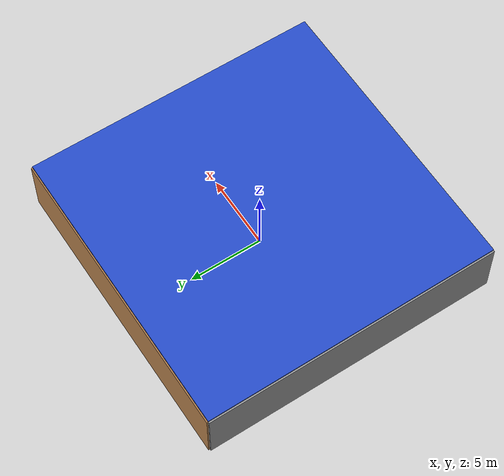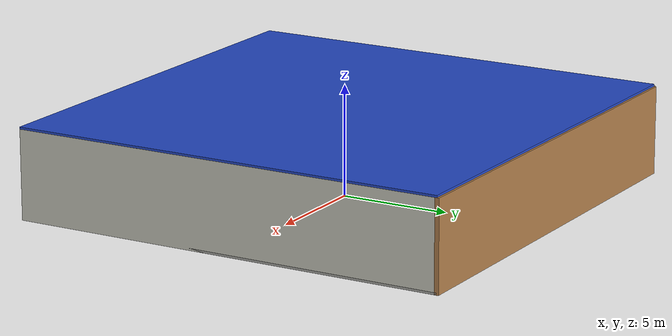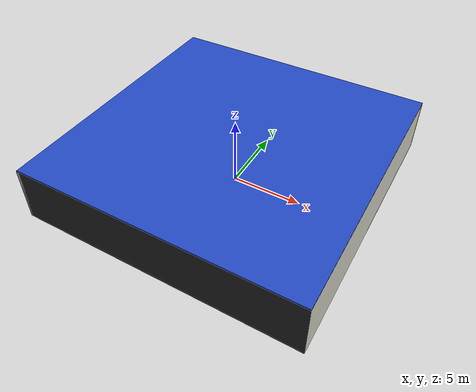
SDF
<sdf version="1.4">
 <world name="default">
  <physics type="ode">
   <max_step_size>0.001</max_step_size>
   <real_time_factor>1</real_time_factor>
   <real_time_update_rate>1000</real_time_update_rate>
   <gravity>0 0 -9.8</gravity>
  </physics>
  <scene><ambient>0.4 0.4 0.4 1</ambient><background>0.7 0.7 0.7 1</background><shadows>1</shadows></scene>
  <model name="Surrounding">
   <static>1</static>
   <link name="Ceiling">
    <collision name="Ceiling_Collision"><geometry><box><size>20 20 0.1</size></box></geometry></collision>
    <visual name="Ceiling_Visual">
     <geometry><box><size>20 20 0.1</size></box></geometry>
     <material>
      <script><uri>file://media/materials/scripts/gazebo.material</uri><name>Gazebo/Blue</name></script>
     </material>
    </visual>
    <pose>0 0 4.05 0 0 0</pose>
   </link>
   <link name="Wall_South">
    <collision name="Wall_South_Collision">
     <geometry><box><size>20 0 4</size></box></geometry>
     <pose>0 0 2 0 -0 0</pose>
    </collision>
    <visual name="Wall_South_Visual">
     <pose>0 0 2 0 -0 0</pose>
     <geometry><box><size>20 0 4</size></box></geometry>
     <material>
      <script><uri>file://media/materials/scripts/gazebo.material</uri><name>Gazebo/Black</name></script>
     </material>
    </visual>
    <velocity_decay><linear>0</linear><angular>0</angular></velocity_decay>
    <pose>0 -10 0 0 -0 0</pose>
   </link>
   <link name="Wall_East">
    <collision name="Wall_21_Collision">
     <geometry><box><size>20 0 4</size></box></geometry>
     <pose>0 0 2 0 -0 0</pose>
    </collision>
    <visual name="Wall_21_Visual">
     <pose>0 0 2 0 -0 0</pose>
     <geometry><box><size>20 0 4</size></box></geometry>
     <material>
      <script><uri>file://media/materials/scripts/gazebo.material</uri><name>Gazebo/PaintedWall</name></script>
     </material>
    </visual>
    <velocity_decay><linear>0</linear><angular>0</angular></velocity_decay>
    <pose>10 0 0 0 -0 1.5708</pose>
   </link>
   <link name="Wall_North">
    <collision name="Wall_22_Collision">
     <geometry><box><size>20 0.2 4</size></box></geometry>
     <pose>0 0 2 0 -0 0</pose>
    </collision>
    <visual name="Wall_22_Visual">
     <pose>0 0 2 0 -0 0</pose>
     <geometry><box><size>20 0.2 4</size></box></geometry>
     <material>
      <script><uri>file://media/materials/scripts/gazebo.material</uri><name>Gazebo/WoodPallet</name></script>
     </material>
    </visual>
    <velocity_decay><linear>0</linear><angular>0</angular></velocity_decay>
    <pose>0 10 0 0 -0 0</pose>
   </link>
   <link name="Wall_West">
    <collision name="Wall_23_Collision">
     <geometry><box><size>20 0.2 4</size></box></geometry>
     <pose>0 0 2 0 -0 0</pose>
    </collision>
    <visual name="Wall_23_Visual">
     <pose>0 0 2 0 -0 0</pose>
     <geometry><box><size>20 0.2 4</size></box></geometry>
     <material>
      <script><uri>file://media/materials/scripts/gazebo.material</uri><name>Gazebo/Grey</name></script>
     </material>
    </visual>
    <velocity_decay><linear>0</linear><angular>0</angular></velocity_decay>
    <pose>-10 0 0 0 0 -1.5708</pose>
   </link>
   <link name="Ground_link">
    <collision name="collision">
     <pose>0 0 .05 0 -0 0</pose>
     <geometry><box><size>20 20 0.1</size></box></geometry>
    </collision>
    <visual name="visual">
     <pose>0 0 .05 0 -0 0</pose>
     <geometry><box><size>20 20 0.1</size></box></geometry>
     <material>
      <script><uri>file://media/materials/scripts/gazebo.material</uri><name>Gazebo/GreyTransparent</name></script>
     </material>
    </visual>
   </link>
   <static>1</static>
  </model>
  <spherical_coordinates>
   <surface_model>EARTH_WGS84</surface_model>
   <latitude_deg>0</latitude_deg>
   <longitude_deg>0</longitude_deg>
   <elevation>0</elevation>
   <heading_deg>0</heading_deg>
  </spherical_coordinates>
  <light name="lightball_0" type="diffuse">
   <diffuse>0.8 0.8 0.8 1</diffuse>
   <specular>0.2 0.2 0.2 1</specular>
   <attenuation>
    <range>100</range>
    <constant>0.7</constant>
    <linear>0.01</linear>
    <quadratic>0.001</quadratic>
   </attenuation>
   <direction>-0.5 0.1 -0.9</direction>
   <pose>9.64113157289 -6.44398406126 2.4490673605 0 0 0</pose>
  </light>
  <light name="lightball_1" type="diffuse">
   <diffuse>0.8 0.8 0.8 1</diffuse>
   <specular>0.2 0.2 0.2 1</specular>
   <attenuation>
    <range>100</range>
    <constant>0.7</constant>
    <linear>0.01</linear>
    <quadratic>0.001</quadratic>
   </attenuation>
   <direction>-0.5 0.1 -0.9</direction>
   <pose>0.432430116221 -3.90871763784 2.77825389933 0 0 0</pose>
  </light>
  <light name="lightball_2" type="diffuse">
   <diffuse>0.8 0.8 0.8 1</diffuse>
   <specular>0.2 0.2 0.2 1</specular>
   <attenuation>
    <range>100</range>
    <constant>0.7</constant>
    <linear>0.01</linear>
    <quadratic>0.001</quadratic>
   </attenuation>
   <direction>-0.5 0.1 -0.9</direction>
   <pose>5.839928071 5.04617245464 2.05970291685 0 0 0</pose>
  </light>
  <light name="lightball_3" type="diffuse">
   <diffuse>0.8 0.8 0.8 1</diffuse>
   <specular>0.2 0.2 0.2 1</specular>
   <attenuation>
    <range>100</range>
    <constant>0.7</constant>
    <linear>0.01</linear>
    <quadratic>0.001</quadratic>
   </attenuation>
   <direction>-0.5 0.1 -0.9</direction>
   <pose>-0.92959716482 -1.30946495415 1.28227009362 0 0 0</pose>
  </light>
  <light name="lightball_4" type="diffuse">
   <diffuse>0.8 0.8 0.8 1</diffuse>
   <specular>0.2 0.2 0.2 1</specular>
   <attenuation>
    <range>100</range>
    <constant>0.7</constant>
    <linear>0.01</linear>
    <quadratic>0.001</quadratic>
   </attenuation>
   <direction>-0.5 0.1 -0.9</direction>
   <pose>-9.91358653133 -5.06271345307 0.524338272687 0 0 0</pose>
  </light>
  <light name="lightball_5" type="diffuse">
   <diffuse>0.8 0.8 0.8 1</diffuse>
   <specular>0.2 0.2 0.2 1</specular>
   <attenuation>
    <range>100</range>
    <constant>0.7</constant>
    <linear>0.01</linear>
    <quadratic>0.001</quadratic>
   </attenuation>
   <direction>-0.5 0.1 -0.9</direction>
   <pose>-6.38280247331 7.08560065748 1.61898477082 0 0 0</pose>
  </light>
  <include><uri>model://cabinet</uri><pose>0.76441483616 8.06987736837 0 0 0 0.0614137713769</pose></include>
  <include><uri>model://cabinet</uri><pose>4.63005015176 7.13494724113 0 0 0 2.9531576639</pose></include>
  <include>
   <uri>model://textured_shapes</uri>
   <pose>6.83057677641 1.89117071617 0 0 0 0.821923205326</pose>
  </include>
 </world>
</sdf>

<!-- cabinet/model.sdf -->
<sdf version="1.5">
  <model name="cabinet">
    <static>true</static>
    <link name="cabinet_bottom_plate">
      <inertial>
        <pose>0 0 -1 0 0 0</pose>
        <inertia>
          <ixx>2.050000</ixx>
          <ixy>0</ixy>
          <ixz>0</ixz>
          <iyy>2.050000</iyy>
          <iyz>0</iyz>
          <izz>2.050000</izz>
        </inertia>
        <mass>25.000000</mass>
      </inertial>
      <collision name="cabinet_bottom_plate_geom">
        <pose>0 0 0.010000 0 0 0</pose>
        <geometry>
          <box>
            <size>0.450000 0.450000 0.020000</size>
          </box>
        </geometry>
      </collision>
      <visual name="cabinet_bottom_plate_geom_visual">
        <pose>0 0 0.010000 0 0 0</pose>
        <geometry>
          <box>
            <size>0.450000 0.450000 0.020000</size>
          </box>
        </geometry>
        <material>
          <script>
            <uri>model://media/materials/scripts/gazebo.material</uri>
            <name>Gazebo/Wood</name>
          </script>
        </material>
      </visual>
      <collision name="cabinet_bottom_plate_geom_cabinet_back_plate">
        <pose>0.235000 0 0.510000 0 0 0</pose>
        <geometry>
          <box>
            <size>0.020000 0.450000 1.020000</size>
          </box>
        </geometry>
      </collision>
      <visual name="cabinet_bottom_plate_geom_cabinet_back_plate_visual">
        <pose>0.235000 0 0.510000 0 0 0</pose>
        <geometry>
          <box>
            <size>0.020000 0.450000 1.020000</size>
          </box>
        </geometry>
        <material>
          <script>
            <uri>model://media/materials/scripts/gazebo.material</uri>
            <name>Gazebo/Wood</name>
          </script>
        </material>
      </visual>
      <collision name="cabinet_bottom_plate_geom_cabinet_left_plate">
        <pose>0 0.235000 0.510000 0 0 0</pose>
        <geometry>
          <box>
            <size>0.450000 0.020000 1.020000</size>
          </box>
        </geometry>
      </collision>
      <visual name="cabinet_bottom_plate_geom_cabinet_left_plate_visual">
        <pose>0 0.235000 0.510000 0 0 0</pose>
        <geometry>
          <box>
            <size>0.450000 0.020000 1.020000</size>
          </box>
        </geometry>
        <material>
          <script>
            <uri>model://media/materials/scripts/gazebo.material</uri>
            <name>Gazebo/Wood</name>
          </script>
        </material>
      </visual>
      <collision name="cabinet_bottom_plate_geom_cabinet_middle_plate">
        <pose>0 0 0.510000 0 0 0</pose>
        <geometry>
          <box>
            <size>0.450000 0.450000 0.020000</size>
          </box>
        </geometry>
      </collision>
      <visual name="cabinet_bottom_plate_geom_cabinet_middle_plate_visual">
        <pose>0 0 0.510000 0 0 0</pose>
        <geometry>
          <box>
            <size>0.450000 0.450000 0.020000</size>
          </box>
        </geometry>
        <material>
          <script>
            <uri>model://media/materials/scripts/gazebo.material</uri>
            <name>Gazebo/Wood</name>
          </script>
        </material>
      </visual>
      <collision name="cabinet_bottom_plate_geom_cabinet_right_plate">
        <pose>0 -0.235000 0.510000 0 0 0</pose>
        <geometry>
          <box>
            <size>0.450000 0.020000 1.020000</size>
          </box>
        </geometry>
      </collision>
      <visual name="cabinet_bottom_plate_geom_cabinet_right_plate_visual">
        <pose>0 -0.235000 0.510000 0 0 0</pose>
        <geometry>
          <box>
            <size>0.450000 0.020000 1.020000</size>
          </box>
        </geometry>
        <material>
          <script>
            <uri>model://media/materials/scripts/gazebo.material</uri>
            <name>Gazebo/Wood</name>
          </script>
        </material>
      </visual>
      <collision name="cabinet_bottom_plate_geom_cabinet_top_plate">
        <pose>0 0 1.010000 0 0 0</pose>
        <geometry>
          <box>
            <size>0.450000 0.450000 0.020000</size>
          </box>
        </geometry>
      </collision>
      <visual name="cabinet_bottom_plate_geom_cabinet_top_plate_visual">
        <pose>0 0 1.010000 0 0 0</pose>
        <geometry>
          <box>
            <size>0.450000 0.450000 0.020000</size>
          </box>
        </geometry>
        <material>
          <script>
            <uri>model://media/materials/scripts/gazebo.material</uri>
            <name>Gazebo/Wood</name>
          </script>
        </material>
      </visual>
    </link>
  </model>
</sdf>

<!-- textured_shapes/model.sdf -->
<sdf version="1.6">
  <model name="textured_shapes">
    <pose>0 0 0.5 0 0 0</pose>
    <link name="box">
      <pose>0 -1.5 0 0 0 0</pose>
      <collision name="collision">
        <geometry>
          <box>
            <size>1 1 1</size>
          </box>
        </geometry>
      </collision>
      <visual name="visual">
        <geometry>
          <box>
            <size>1 1 1</size>
          </box>
        </geometry>
        <material>
          <script>
            <uri>model://../model_source/models/textured_shapes/materials/scripts</uri>
            <uri>model://../model_source/models/textured_shapes/materials/textures</uri>
            <name>TexturedShape/Squares</name>
          </script>
        </material>
      </visual>
    </link>
    <link name="sphere">
      <collision name="collision">
        <geometry>
          <sphere>
            <radius>0.5</radius>
          </sphere>
        </geometry>
      </collision>
      <visual name="visual">
        <geometry>
          <sphere>
            <radius>0.5</radius>
          </sphere>
        </geometry>
        <material>
          <script>
            <uri>model://../model_source/models/textured_shapes/materials/scripts</uri>
            <uri>model://../model_source/models/textured_shapes/materials/textures</uri>
            <name>TexturedShape/Squares</name>
          </script>
        </material>
      </visual>
    </link>
    <link name="cylinder">
      <pose>0 1.5 0 0 0 0</pose>
      <collision name="collision">
        <geometry>
          <cylinder>
            <radius>0.5</radius>
            <length>1</length>
          </cylinder>
        </geometry>
      </collision>
      <visual name="visual">
        <geometry>
          <cylinder>
            <radius>0.5</radius>
            <length>1</length>
          </cylinder>
        </geometry>
        <material>
          <script>
            <uri>model://../model_source/models/textured_shapes/materials/scripts</uri>
            <uri>model://../model_source/models/textured_shapes/materials/textures</uri>
            <name>TexturedShape/Squares</name>
          </script>
        </material>
      </visual>
    </link>
  </model>
</sdf>
